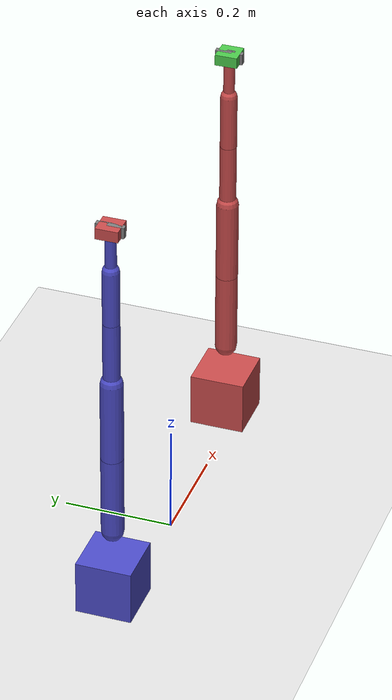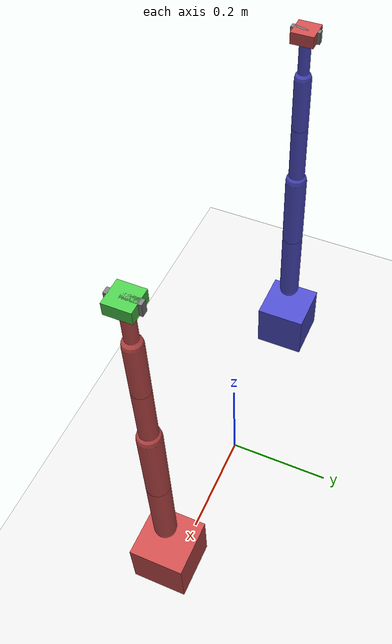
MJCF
<!-- 简化的双臂机械臂示例模型（用于测试）-->
<!-- 这是一个简化版本，等待真实的 Alicia-D MJCF 模型后替换 -->

<mujoco model="simple_dual_arm">
  <compiler angle="radian"/>

  <option timestep="0.002" gravity="0 0 -9.81"/>

  <asset>
    <!-- 简单的几何体，无需外部 mesh -->
  </asset>

  <worldbody>
    <light diffuse=".5 .5 .5" pos="0 0 3" dir="0 0 -1"/>
    <geom type="plane" size="2 2 0.1" rgba=".9 .9 .9 1"/>

    <!-- 左臂 -->
    <body name="left_base" pos="-0.3 0 0.1">
      <geom type="box" size="0.05 0.05 0.05" rgba="0.3 0.3 0.8 1"/>

      <!-- 关节 1 -->
      <joint name="left_joint1" type="hinge" axis="0 0 1" range="-3.14 3.14"/>
      <body name="left_link1" pos="0 0 0.1">
        <geom type="capsule" size="0.02" fromto="0 0 0 0 0 0.15" rgba="0.3 0.3 0.8 1"/>

        <!-- 关节 2 -->
        <joint name="left_joint2" type="hinge" axis="0 1 0" range="-1.57 1.57"/>
        <body name="left_link2" pos="0 0 0.15">
          <geom type="capsule" size="0.02" fromto="0 0 0 0 0 0.15" rgba="0.3 0.3 0.8 1"/>

          <!-- 关节 3 -->
          <joint name="left_joint3" type="hinge" axis="0 1 0" range="-1.57 1.57"/>
          <body name="left_link3" pos="0 0 0.15">
            <geom type="capsule" size="0.015" fromto="0 0 0 0 0 0.12" rgba="0.3 0.3 0.8 1"/>

            <!-- 关节 4 -->
            <joint name="left_joint4" type="hinge" axis="1 0 0" range="-3.14 3.14"/>
            <body name="left_link4" pos="0 0 0.12">
              <geom type="capsule" size="0.015" fromto="0 0 0 0 0 0.10" rgba="0.3 0.3 0.8 1"/>

              <!-- 关节 5 -->
              <joint name="left_joint5" type="hinge" axis="0 1 0" range="-1.57 1.57"/>
              <body name="left_link5" pos="0 0 0.10">
                <geom type="capsule" size="0.01" fromto="0 0 0 0 0 0.08" rgba="0.3 0.3 0.8 1"/>

                <!-- 关节 6 -->
                <joint name="left_joint6" type="hinge" axis="1 0 0" range="-3.14 3.14"/>
                <body name="left_end_effector" pos="0 0 0.08">
                  <geom type="box" size="0.02 0.02 0.01" rgba="0.8 0.3 0.3 1"/>

                  <!-- 夹爪 -->
                  <joint name="left_gripper" type="slide" axis="0 1 0" range="0 0.04"/>
                  <body name="left_finger1" pos="0 0.01 0">
                    <geom type="box" size="0.005 0.015 0.01" rgba="0.5 0.5 0.5 1"/>
                  </body>
                  <body name="left_finger2" pos="0 -0.01 0">
                    <geom type="box" size="0.005 0.015 0.01" rgba="0.5 0.5 0.5 1"/>
                  </body>
                </body>
              </body>
            </body>
          </body>
        </body>
      </body>
    </body>

    <!-- 右臂（镜像左臂）-->
    <body name="right_base" pos="0.3 0 0.1">
      <geom type="box" size="0.05 0.05 0.05" rgba="0.8 0.3 0.3 1"/>

      <joint name="right_joint1" type="hinge" axis="0 0 1" range="-3.14 3.14"/>
      <body name="right_link1" pos="0 0 0.1">
        <geom type="capsule" size="0.02" fromto="0 0 0 0 0 0.15" rgba="0.8 0.3 0.3 1"/>

        <joint name="right_joint2" type="hinge" axis="0 1 0" range="-1.57 1.57"/>
        <body name="right_link2" pos="0 0 0.15">
          <geom type="capsule" size="0.02" fromto="0 0 0 0 0 0.15" rgba="0.8 0.3 0.3 1"/>

          <joint name="right_joint3" type="hinge" axis="0 1 0" range="-1.57 1.57"/>
          <body name="right_link3" pos="0 0 0.15">
            <geom type="capsule" size="0.015" fromto="0 0 0 0 0 0.12" rgba="0.8 0.3 0.3 1"/>

            <joint name="right_joint4" type="hinge" axis="1 0 0" range="-3.14 3.14"/>
            <body name="right_link4" pos="0 0 0.12">
              <geom type="capsule" size="0.015" fromto="0 0 0 0 0 0.10" rgba="0.8 0.3 0.3 1"/>

              <joint name="right_joint5" type="hinge" axis="0 1 0" range="-1.57 1.57"/>
              <body name="right_link5" pos="0 0 0.10">
                <geom type="capsule" size="0.01" fromto="0 0 0 0 0 0.08" rgba="0.8 0.3 0.3 1"/>

                <joint name="right_joint6" type="hinge" axis="1 0 0" range="-3.14 3.14"/>
                <body name="right_end_effector" pos="0 0 0.08">
                  <geom type="box" size="0.02 0.02 0.01" rgba="0.3 0.8 0.3 1"/>

                  <joint name="right_gripper" type="slide" axis="0 1 0" range="0 0.04"/>
                  <body name="right_finger1" pos="0 0.01 0">
                    <geom type="box" size="0.005 0.015 0.01" rgba="0.5 0.5 0.5 1"/>
                  </body>
                  <body name="right_finger2" pos="0 -0.01 0">
                    <geom type="box" size="0.005 0.015 0.01" rgba="0.5 0.5 0.5 1"/>
                  </body>
                </body>
              </body>
            </body>
          </body>
        </body>
      </body>
    </body>
  </worldbody>

  <actuator>
    <!-- 左臂执行器 -->
    <motor name="left_motor1" joint="left_joint1" gear="1"/>
    <motor name="left_motor2" joint="left_joint2" gear="1"/>
    <motor name="left_motor3" joint="left_joint3" gear="1"/>
    <motor name="left_motor4" joint="left_joint4" gear="1"/>
    <motor name="left_motor5" joint="left_joint5" gear="1"/>
    <motor name="left_motor6" joint="left_joint6" gear="1"/>
    <motor name="left_gripper_motor" joint="left_gripper" gear="1"/>

    <!-- 右臂执行器 -->
    <motor name="right_motor1" joint="right_joint1" gear="1"/>
    <motor name="right_motor2" joint="right_joint2" gear="1"/>
    <motor name="right_motor3" joint="right_joint3" gear="1"/>
    <motor name="right_motor4" joint="right_joint4" gear="1"/>
    <motor name="right_motor5" joint="right_joint5" gear="1"/>
    <motor name="right_motor6" joint="right_joint6" gear="1"/>
    <motor name="right_gripper_motor" joint="right_gripper" gear="1"/>
  </actuator>
</mujoco>
